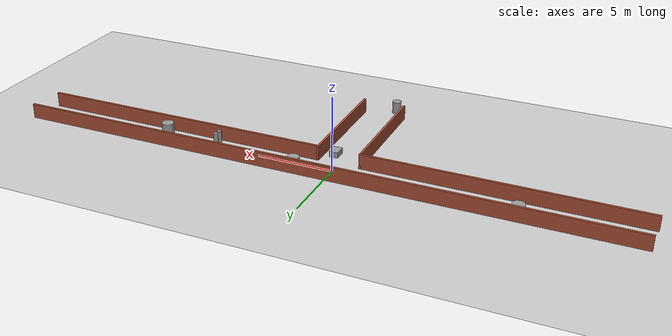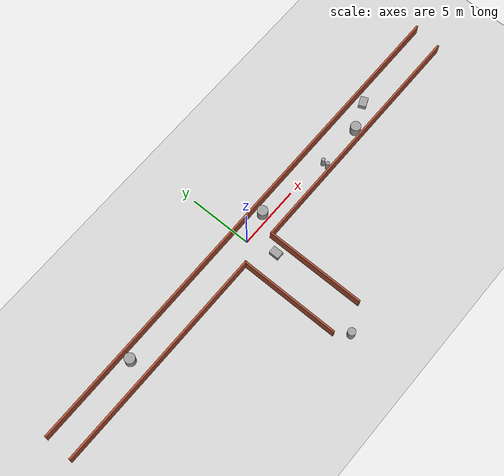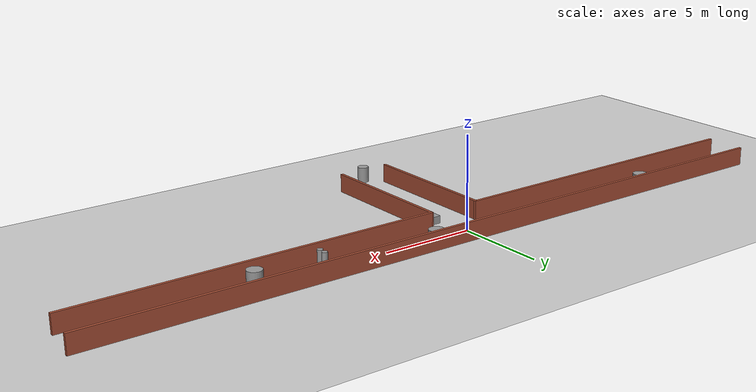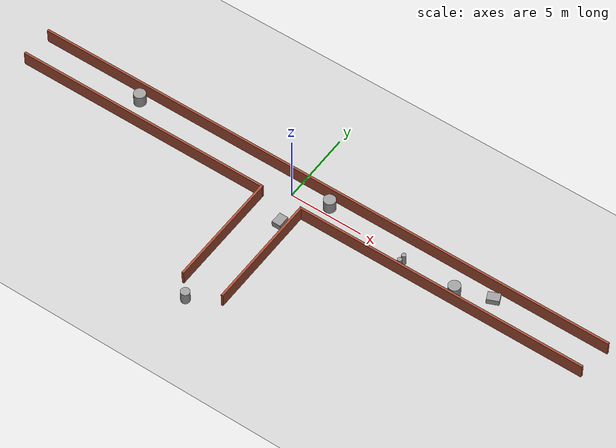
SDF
<sdf version="1.6">
 <world name="default">
  <light name="sun" type="directional">
   <pose>0 0 10 0 -0 0</pose>
   <diffuse>0.8 0.8 0.8 1</diffuse>
   <specular>0.2 0.2 0.2 1</specular>
   <attenuation>
    <range>1000</range>
    <constant>0.9</constant>
    <linear>0.01</linear>
    <quadratic>0.001</quadratic>
   </attenuation>
   <direction>-0.5 0.1 -0.9</direction>
  </light>
  <model name="ground_plane">
   <static>1</static>
   <link name="link">
    <collision name="collision">
     <geometry><plane><normal>0 0 1</normal><size>100 100</size></plane></geometry>
     <surface><friction><ode><mu>100</mu><mu2>50</mu2></ode></friction></surface>
    </collision>
    <visual name="visual">
     <cast_shadows>0</cast_shadows>
     <geometry><plane><normal>0 0 1</normal><size>100 100</size></plane></geometry>
     <material>
      <script><uri>file://media/materials/scripts/gazebo.material</uri><name>Gazebo/Grey</name></script>
     </material>
    </visual>
   </link>
  </model>
  <gravity>0 0 -9.8</gravity>
  <magnetic_field>6e-06 2.3e-05 -4.2e-05</magnetic_field>
  <atmosphere type="adiabatic"/>
  <physics name="default_physics" default="0" type="ode">
   <max_step_size>0.001</max_step_size>
   <real_time_factor>1</real_time_factor>
   <real_time_update_rate>1000</real_time_update_rate>
  </physics>
  <scene><ambient>0.4 0.4 0.4 1</ambient><background>0.7 0.7 0.7 1</background><shadows>1</shadows></scene>
  <spherical_coordinates>
   <surface_model>EARTH_WGS84</surface_model>
   <latitude_deg>0</latitude_deg>
   <longitude_deg>0</longitude_deg>
   <elevation>0</elevation>
   <heading_deg>0</heading_deg>
  </spherical_coordinates>
  <model name="brick_2.4m_corridor">
   <pose>1.16834 -3.89086 0 0 -0 0</pose>
   <link name="Wall_21">
    <collision name="Wall_21_Collision">
     <geometry><box><size>41 0.15 1</size></box></geometry>
     <pose>0 0 0.5 0 -0 0</pose>
    </collision>
    <visual name="Wall_21_Visual">
     <pose>0 0 0.5 0 -0 0</pose>
     <geometry><box><size>41 0.15 1</size></box></geometry>
     <material>
      <script><uri>file://media/materials/scripts/gazebo.material</uri><name>Gazebo/Bricks</name></script>
      <ambient>1 1 1 1</ambient>
     </material>
     <meta><layer>0</layer></meta>
    </visual>
    <pose>0.023372 5.05003 0 0 -0 0</pose>
   </link>
   <link name="Wall_25">
    <collision name="Wall_25_Collision">
     <geometry><box><size>18 0.15 1</size></box></geometry>
     <pose>0 0 0.5 0 -0 0</pose>
    </collision>
    <visual name="Wall_25_Visual">
     <pose>0 0 0.5 0 -0 0</pose>
     <geometry><box><size>18 0.15 1</size></box></geometry>
     <material>
      <script><uri>file://media/materials/scripts/gazebo.material</uri><name>Gazebo/Bricks</name></script>
      <ambient>1 1 1 1</ambient>
     </material>
     <meta><layer>0</layer></meta>
    </visual>
    <pose>-11.5234 2.8 0 0 -0 -3e-06</pose>
   </link>
   <link name="Wall_27">
    <collision name="Wall_27_Collision">
     <geometry><box><size>8 0.15 1</size></box></geometry>
     <pose>0 0 0.5 0 -0 0</pose>
    </collision>
    <visual name="Wall_27_Visual">
     <pose>0 0 0.5 0 -0 0</pose>
     <geometry><box><size>8 0.15 1</size></box></geometry>
     <material>
      <script><uri>file://media/materials/scripts/gazebo.material</uri><name>Gazebo/Bricks</name></script>
      <ambient>1 1 1 1</ambient>
     </material>
     <meta><layer>0</layer></meta>
    </visual>
    <pose>-2.59859 -1.12503 0 0 -0 -1.5708</pose>
   </link>
   <link name="Wall_31">
    <collision name="Wall_31_Collision">
     <geometry><box><size>8 0.15 1</size></box></geometry>
     <pose>0 0 0.5 0 -0 0</pose>
    </collision>
    <visual name="Wall_31_Visual">
     <pose>0 0 0.5 0 -0 0</pose>
     <geometry><box><size>8 0.15 1</size></box></geometry>
     <material>
      <script><uri>file://media/materials/scripts/gazebo.material</uri><name>Gazebo/Bricks</name></script>
      <ambient>1 1 1 1</ambient>
     </material>
     <meta><layer>0</layer></meta>
    </visual>
    <pose>0.251411 -1.12503 0 0 -0 1.5708</pose>
   </link>
   <link name="Wall_32">
    <collision name="Wall_32_Collision">
     <geometry><box><size>20 0.15 1</size></box></geometry>
     <pose>0 0 0.5 0 -0 0</pose>
    </collision>
    <visual name="Wall_32_Visual">
     <pose>0 0 0.5 0 -0 0</pose>
     <geometry><box><size>20 0.15 1</size></box></geometry>
     <material>
      <script><uri>file://media/materials/scripts/gazebo.material</uri><name>Gazebo/Bricks</name></script>
      <ambient>1 1 1 1</ambient>
     </material>
     <meta><layer>0</layer></meta>
    </visual>
    <pose>10.1764 2.79997 0 0 -0 0</pose>
   </link>
   <static>1</static>
  </model>
  <model name="cylinder_1">
   <link name="link">
    <inertial>
     <mass>10000</mass>
     <inertia><ixx>3389.58</ixx><ixy>0</ixy><ixz>0</ixz><iyy>3389.58</iyy><iyz>0</iyz><izz>112.5</izz></inertia>
    </inertial>
    <visual name="visual">
     <geometry><cylinder><radius>0.15</radius><length>1</length></cylinder></geometry>
     <material>
      <script><name>Gazebo/Grey</name><uri>file://media/materials/scripts/gazebo.material</uri></script>
      <shader type="pixel"><normal_map>__default__</normal_map></shader>
      <ambient>0.3 0.3 0.3 1</ambient>
      <diffuse>0.7 0.7 0.7 1</diffuse>
      <specular>0.01 0.01 0.01 1</specular>
      <emissive>0 0 0 1</emissive>
     </material>
     <pose>0 0 0.3 0 -0 0</pose>
    </visual>
    <collision name="collision">
     <pose>0 0 0.3 0 -0 0</pose>
     <geometry><cylinder><radius>0.15</radius><length>8</length></cylinder></geometry>
     <surface>
      <friction>
       <ode><mu>1</mu><mu2>1</mu2><fdir1>0 0 0</fdir1><slip1>0</slip1><slip2>0</slip2></ode>
       <torsional>
        <coefficient>1</coefficient>
        <patch_radius>0</patch_radius>
        <surface_radius>0</surface_radius>
        <use_patch_radius>1</use_patch_radius>
        <ode><slip>0</slip></ode>
       </torsional>
      </friction>
      <bounce><restitution_coefficient>0</restitution_coefficient><threshold>1e+06</threshold></bounce>
      <contact>
       <collide_without_contact>0</collide_without_contact>
       <collide_without_contact_bitmask>1</collide_without_contact_bitmask>
       <collide_bitmask>1</collide_bitmask>
       <ode>
        <soft_cfm>0</soft_cfm>
        <soft_erp>0.2</soft_erp>
        <kp>1e+13</kp>
        <kd>1</kd>
        <max_vel>0.01</max_vel>
        <min_depth>0</min_depth>
       </ode>
       <bullet>
        <split_impulse>1</split_impulse>
        <split_impulse_penetration_threshold>-0.01</split_impulse_penetration_threshold>
        <soft_cfm>0</soft_cfm>
        <soft_erp>0.2</soft_erp>
        <kp>1e+13</kp>
        <kd>1</kd>
       </bullet>
      </contact>
     </surface>
    </collision>
   </link>
   <static>1</static>
   <pose>8.30315 -0.716145 0 0 -0 0</pose>
  </model>
  <model name="cylinder_1_0">
   <link name="link">
    <inertial>
     <mass>10000</mass>
     <inertia><ixx>3389.58</ixx><ixy>0</ixy><ixz>0</ixz><iyy>3389.58</iyy><iyz>0</iyz><izz>112.5</izz></inertia>
    </inertial>
    <visual name="visual">
     <geometry><cylinder><radius>0.15</radius><length>1</length></cylinder></geometry>
     <material>
      <script><name>Gazebo/Grey</name><uri>file://media/materials/scripts/gazebo.material</uri></script>
      <shader type="pixel"><normal_map>__default__</normal_map></shader>
      <ambient>0.3 0.3 0.3 1</ambient>
      <diffuse>0.7 0.7 0.7 1</diffuse>
      <specular>0.01 0.01 0.01 1</specular>
      <emissive>0 0 0 1</emissive>
     </material>
     <pose>0 0 0.3 0 -0 0</pose>
    </visual>
    <collision name="collision">
     <pose>0 0 0.3 0 -0 0</pose>
     <geometry><cylinder><radius>0.15</radius><length>8</length></cylinder></geometry>
     <surface>
      <friction>
       <ode><mu>1</mu><mu2>1</mu2><fdir1>0 0 0</fdir1><slip1>0</slip1><slip2>0</slip2></ode>
       <torsional>
        <coefficient>1</coefficient>
        <patch_radius>0</patch_radius>
        <surface_radius>0</surface_radius>
        <use_patch_radius>1</use_patch_radius>
        <ode><slip>0</slip></ode>
       </torsional>
      </friction>
      <bounce><restitution_coefficient>0</restitution_coefficient><threshold>1e+06</threshold></bounce>
      <contact>
       <collide_without_contact>0</collide_without_contact>
       <collide_without_contact_bitmask>1</collide_without_contact_bitmask>
       <collide_bitmask>1</collide_bitmask>
       <ode>
        <soft_cfm>0</soft_cfm>
        <soft_erp>0.2</soft_erp>
        <kp>1e+13</kp>
        <kd>1</kd>
        <max_vel>0.01</max_vel>
        <min_depth>0</min_depth>
       </ode>
       <bullet>
        <split_impulse>1</split_impulse>
        <split_impulse_penetration_threshold>-0.01</split_impulse_penetration_threshold>
        <soft_cfm>0</soft_cfm>
        <soft_erp>0.2</soft_erp>
        <kp>1e+13</kp>
        <kd>1</kd>
       </bullet>
      </contact>
     </surface>
    </collision>
   </link>
   <static>1</static>
   <pose>8.3148 -0.308662 0 0 -0 0</pose>
  </model>
  <model name="box_2_length_0">
   <link name="link_3">
    <inertial>
     <mass>0.20289</mass>
     <inertia>
      <ixx>0.00986764</ixx>
      <ixy>0</ixy>
      <ixz>0</ixz>
      <iyy>0.018296</iyy>
      <iyz>0</iyz>
      <izz>0.0253866</izz>
     </inertia>
    </inertial>
    <pose>0 0 0.2 0 -0 1.57</pose>
    <visual name="visual">
     <geometry><box><size>0.8 0.6 0.4</size></box></geometry>
     <material>
      <lighting>1</lighting>
      <script><uri>file://media/materials/scripts/gazebo.material</uri><name>Gazebo/Grey</name></script>
      <shader type="pixel"><normal_map>__default__</normal_map></shader>
     </material>
    </visual>
    <collision name="collision">
     <geometry><box><size>0.8 0.6 0.4</size></box></geometry>
     <surface>
      <friction>
       <ode><mu>1</mu><mu2>1</mu2><fdir1>0 0 0</fdir1><slip1>0</slip1><slip2>0</slip2></ode>
       <torsional>
        <coefficient>1</coefficient>
        <patch_radius>0</patch_radius>
        <surface_radius>0</surface_radius>
        <use_patch_radius>1</use_patch_radius>
        <ode><slip>0</slip></ode>
       </torsional>
      </friction>
      <bounce><restitution_coefficient>0</restitution_coefficient><threshold>1e+06</threshold></bounce>
      <contact>
       <collide_without_contact>0</collide_without_contact>
       <collide_without_contact_bitmask>1</collide_without_contact_bitmask>
       <collide_bitmask>1</collide_bitmask>
       <ode>
        <soft_cfm>0</soft_cfm>
        <soft_erp>0.2</soft_erp>
        <kp>1e+13</kp>
        <kd>1</kd>
        <max_vel>0.01</max_vel>
        <min_depth>0</min_depth>
       </ode>
       <bullet>
        <split_impulse>1</split_impulse>
        <split_impulse_penetration_threshold>-0.01</split_impulse_penetration_threshold>
        <soft_cfm>0</soft_cfm>
        <soft_erp>0.2</soft_erp>
        <kp>1e+13</kp>
        <kd>1</kd>
       </bullet>
      </contact>
     </surface>
    </collision>
   </link>
   <static>0</static>
   <pose>0.654052 -2.14935 -0 0 -0 0</pose>
  </model>
  <model name="cylinder_3_0">
   <link name="link">
    <inertial>
     <mass>10000</mass>
     <inertia><ixx>3389.58</ixx><ixy>0</ixy><ixz>0</ixz><iyy>3389.58</iyy><iyz>0</iyz><izz>112.5</izz></inertia>
    </inertial>
    <visual name="visual">
     <geometry><cylinder><radius>0.3</radius><length>1</length></cylinder></geometry>
     <material>
      <script><name>Gazebo/Grey</name><uri>file://media/materials/scripts/gazebo.material</uri></script>
      <shader type="pixel"><normal_map>__default__</normal_map></shader>
      <ambient>0.3 0.3 0.3 1</ambient>
      <diffuse>0.7 0.7 0.7 1</diffuse>
      <specular>0.01 0.01 0.01 1</specular>
      <emissive>0 0 0 1</emissive>
     </material>
     <pose>0 0 0.3 0 -0 0</pose>
    </visual>
    <collision name="collision">
     <pose>0 0 0.3 0 -0 0</pose>
     <geometry><cylinder><radius>0.15</radius><length>8</length></cylinder></geometry>
     <surface>
      <friction>
       <ode><mu>1</mu><mu2>1</mu2><fdir1>0 0 0</fdir1><slip1>0</slip1><slip2>0</slip2></ode>
       <torsional>
        <coefficient>1</coefficient>
        <patch_radius>0</patch_radius>
        <surface_radius>0</surface_radius>
        <use_patch_radius>1</use_patch_radius>
        <ode><slip>0</slip></ode>
       </torsional>
      </friction>
      <bounce><restitution_coefficient>0</restitution_coefficient><threshold>1e+06</threshold></bounce>
      <contact>
       <collide_without_contact>0</collide_without_contact>
       <collide_without_contact_bitmask>1</collide_without_contact_bitmask>
       <collide_bitmask>1</collide_bitmask>
       <ode>
        <soft_cfm>0</soft_cfm>
        <soft_erp>0.2</soft_erp>
        <kp>1e+13</kp>
        <kd>1</kd>
        <max_vel>0.01</max_vel>
        <min_depth>0</min_depth>
       </ode>
       <bullet>
        <split_impulse>1</split_impulse>
        <split_impulse_penetration_threshold>-0.01</split_impulse_penetration_threshold>
        <soft_cfm>0</soft_cfm>
        <soft_erp>0.2</soft_erp>
        <kp>1e+13</kp>
        <kd>1</kd>
       </bullet>
      </contact>
     </surface>
    </collision>
   </link>
   <static>1</static>
   <pose>-0.593279 -9.91195 0 0 -0 0</pose>
  </model>
  <model name="box_2_left">
   <link name="link_3">
    <inertial>
     <mass>0.20289</mass>
     <inertia>
      <ixx>0.00986764</ixx>
      <ixy>0</ixy>
      <ixz>0</ixz>
      <iyy>0.018296</iyy>
      <iyz>0</iyz>
      <izz>0.0253866</izz>
     </inertia>
    </inertial>
    <pose>0 0 0.2 0 -0 0.4</pose>
    <visual name="visual">
     <geometry><box><size>0.8 0.6 0.4</size></box></geometry>
     <material>
      <lighting>1</lighting>
      <script><uri>file://media/materials/scripts/gazebo.material</uri><name>Gazebo/Grey</name></script>
      <shader type="pixel"><normal_map>__default__</normal_map></shader>
     </material>
    </visual>
    <collision name="collision">
     <geometry><box><size>0.8 0.6 0.4</size></box></geometry>
     <surface>
      <friction>
       <ode><mu>1</mu><mu2>1</mu2><fdir1>0 0 0</fdir1><slip1>0</slip1><slip2>0</slip2></ode>
       <torsional>
        <coefficient>1</coefficient>
        <patch_radius>0</patch_radius>
        <surface_radius>0</surface_radius>
        <use_patch_radius>1</use_patch_radius>
        <ode><slip>0</slip></ode>
       </torsional>
      </friction>
      <bounce><restitution_coefficient>0</restitution_coefficient><threshold>1e+06</threshold></bounce>
      <contact>
       <collide_without_contact>0</collide_without_contact>
       <collide_without_contact_bitmask>1</collide_without_contact_bitmask>
       <collide_bitmask>1</collide_bitmask>
       <ode>
        <soft_cfm>0</soft_cfm>
        <soft_erp>0.2</soft_erp>
        <kp>1e+13</kp>
        <kd>1</kd>
        <max_vel>0.01</max_vel>
        <min_depth>0</min_depth>
       </ode>
       <bullet>
        <split_impulse>1</split_impulse>
        <split_impulse_penetration_threshold>-0.01</split_impulse_penetration_threshold>
        <soft_cfm>0</soft_cfm>
        <soft_erp>0.2</soft_erp>
        <kp>1e+13</kp>
        <kd>1</kd>
       </bullet>
      </contact>
     </surface>
    </collision>
   </link>
   <static>0</static>
   <pose>14.1636 0.488149 -0 0 -0 0</pose>
  </model>
  <model name="cylinder_2_0">
   <link name="link">
    <inertial>
     <mass>10000</mass>
     <inertia><ixx>3389.58</ixx><ixy>0</ixy><ixz>0</ixz><iyy>3389.58</iyy><iyz>0</iyz><izz>112.5</izz></inertia>
    </inertial>
    <visual name="visual">
     <geometry><cylinder><radius>0.4</radius><length>1</length></cylinder></geometry>
     <material>
      <script><name>Gazebo/Grey</name><uri>file://media/materials/scripts/gazebo.material</uri></script>
      <shader type="pixel"><normal_map>__default__</normal_map></shader>
      <ambient>0.3 0.3 0.3 1</ambient>
      <diffuse>0.7 0.7 0.7 1</diffuse>
      <specular>0.01 0.01 0.01 1</specular>
      <emissive>0 0 0 1</emissive>
     </material>
     <pose>0 0 0.3 0 -0 0</pose>
    </visual>
    <collision name="collision">
     <pose>0 0 0.3 0 -0 0</pose>
     <geometry><cylinder><radius>0.4</radius><length>8</length></cylinder></geometry>
     <surface>
      <friction>
       <ode><mu>1</mu><mu2>1</mu2><fdir1>0 0 0</fdir1><slip1>0</slip1><slip2>0</slip2></ode>
       <torsional>
        <coefficient>1</coefficient>
        <patch_radius>0</patch_radius>
        <surface_radius>0</surface_radius>
        <use_patch_radius>1</use_patch_radius>
        <ode><slip>0</slip></ode>
       </torsional>
      </friction>
      <bounce><restitution_coefficient>0</restitution_coefficient><threshold>1e+06</threshold></bounce>
      <contact>
       <collide_without_contact>0</collide_without_contact>
       <collide_without_contact_bitmask>1</collide_without_contact_bitmask>
       <collide_bitmask>1</collide_bitmask>
       <ode>
        <soft_cfm>0</soft_cfm>
        <soft_erp>0.2</soft_erp>
        <kp>1e+13</kp>
        <kd>1</kd>
        <max_vel>0.01</max_vel>
        <min_depth>0</min_depth>
       </ode>
       <bullet>
        <split_impulse>1</split_impulse>
        <split_impulse_penetration_threshold>-0.01</split_impulse_penetration_threshold>
        <soft_cfm>0</soft_cfm>
        <soft_erp>0.2</soft_erp>
        <kp>1e+13</kp>
        <kd>1</kd>
       </bullet>
      </contact>
     </surface>
    </collision>
   </link>
   <static>1</static>
   <pose>-11.7639 0.520922 0 0 -0 0</pose>
  </model>
  <model name="cylinder_2_1">
   <link name="link">
    <inertial>
     <mass>10000</mass>
     <inertia><ixx>3389.58</ixx><ixy>0</ixy><ixz>0</ixz><iyy>3389.58</iyy><iyz>0</iyz><izz>112.5</izz></inertia>
    </inertial>
    <visual name="visual">
     <geometry><cylinder><radius>0.4</radius><length>1</length></cylinder></geometry>
     <material>
      <script><name>Gazebo/Grey</name><uri>file://media/materials/scripts/gazebo.material</uri></script>
      <shader type="pixel"><normal_map>__default__</normal_map></shader>
      <ambient>0.3 0.3 0.3 1</ambient>
      <diffuse>0.7 0.7 0.7 1</diffuse>
      <specular>0.01 0.01 0.01 1</specular>
      <emissive>0 0 0 1</emissive>
     </material>
     <pose>0 0 0.3 0 -0 0</pose>
    </visual>
    <collision name="collision">
     <pose>0 0 0.3 0 -0 0</pose>
     <geometry><cylinder><radius>0.4</radius><length>8</length></cylinder></geometry>
     <surface>
      <friction>
       <ode><mu>1</mu><mu2>1</mu2><fdir1>0 0 0</fdir1><slip1>0</slip1><slip2>0</slip2></ode>
       <torsional>
        <coefficient>1</coefficient>
        <patch_radius>0</patch_radius>
        <surface_radius>0</surface_radius>
        <use_patch_radius>1</use_patch_radius>
        <ode><slip>0</slip></ode>
       </torsional>
      </friction>
      <bounce><restitution_coefficient>0</restitution_coefficient><threshold>1e+06</threshold></bounce>
      <contact>
       <collide_without_contact>0</collide_without_contact>
       <collide_without_contact_bitmask>1</collide_without_contact_bitmask>
       <collide_bitmask>1</collide_bitmask>
       <ode>
        <soft_cfm>0</soft_cfm>
        <soft_erp>0.2</soft_erp>
        <kp>1e+13</kp>
        <kd>1</kd>
        <max_vel>0.01</max_vel>
        <min_depth>0</min_depth>
       </ode>
       <bullet>
        <split_impulse>1</split_impulse>
        <split_impulse_penetration_threshold>-0.01</split_impulse_penetration_threshold>
        <soft_cfm>0</soft_cfm>
        <soft_erp>0.2</soft_erp>
        <kp>1e+13</kp>
        <kd>1</kd>
       </bullet>
      </contact>
     </surface>
    </collision>
   </link>
   <static>1</static>
   <pose>2.37926 0.534041 0 0 -0 0</pose>
  </model>
  <model name="cylinder_2">
   <link name="link">
    <inertial>
     <mass>10000</mass>
     <inertia><ixx>3389.58</ixx><ixy>0</ixy><ixz>0</ixz><iyy>3389.58</iyy><iyz>0</iyz><izz>112.5</izz></inertia>
    </inertial>
    <visual name="visual">
     <geometry><cylinder><radius>0.4</radius><length>1</length></cylinder></geometry>
     <material>
      <script><name>Gazebo/Grey</name><uri>file://media/materials/scripts/gazebo.material</uri></script>
      <shader type="pixel"><normal_map>__default__</normal_map></shader>
      <ambient>0.3 0.3 0.3 1</ambient>
      <diffuse>0.7 0.7 0.7 1</diffuse>
      <specular>0.01 0.01 0.01 1</specular>
      <emissive>0 0 0 1</emissive>
     </material>
     <pose>0 0 0.3 0 -0 0</pose>
    </visual>
    <collision name="collision">
     <pose>0 0 0.3 0 -0 0</pose>
     <geometry><cylinder><radius>0.4</radius><length>8</length></cylinder></geometry>
     <surface>
      <friction>
       <ode><mu>1</mu><mu2>1</mu2><fdir1>0 0 0</fdir1><slip1>0</slip1><slip2>0</slip2></ode>
       <torsional>
        <coefficient>1</coefficient>
        <patch_radius>0</patch_radius>
        <surface_radius>0</surface_radius>
        <use_patch_radius>1</use_patch_radius>
        <ode><slip>0</slip></ode>
       </torsional>
      </friction>
      <bounce><restitution_coefficient>0</restitution_coefficient><threshold>1e+06</threshold></bounce>
      <contact>
       <collide_without_contact>0</collide_without_contact>
       <collide_without_contact_bitmask>1</collide_without_contact_bitmask>
       <collide_bitmask>1</collide_bitmask>
       <ode>
        <soft_cfm>0</soft_cfm>
        <soft_erp>0.2</soft_erp>
        <kp>1e+13</kp>
        <kd>1</kd>
        <max_vel>0.01</max_vel>
        <min_depth>0</min_depth>
       </ode>
       <bullet>
        <split_impulse>1</split_impulse>
        <split_impulse_penetration_threshold>-0.01</split_impulse_penetration_threshold>
        <soft_cfm>0</soft_cfm>
        <soft_erp>0.2</soft_erp>
        <kp>1e+13</kp>
        <kd>1</kd>
       </bullet>
      </contact>
     </surface>
    </collision>
   </link>
   <static>1</static>
   <pose>12.0016 -0.436654 0 0 -0 0</pose>
  </model>
 </world>
</sdf>
